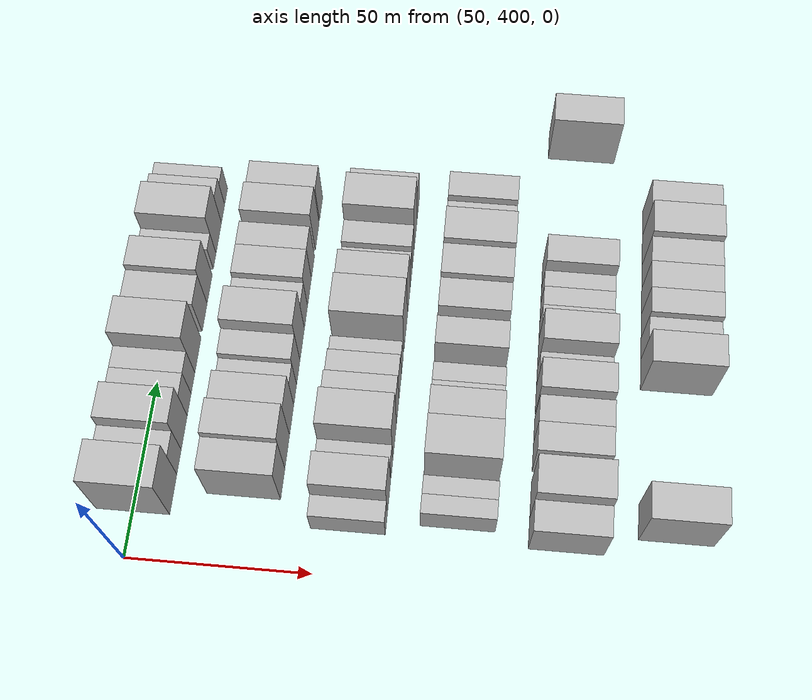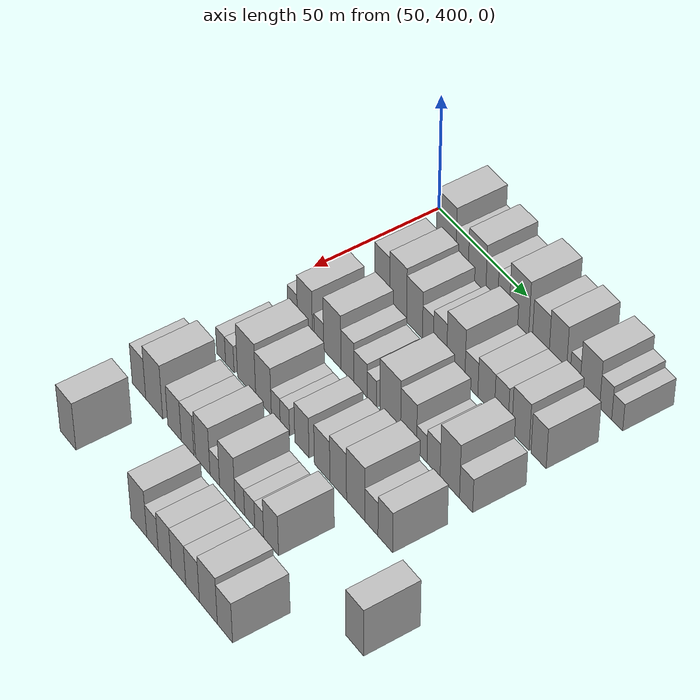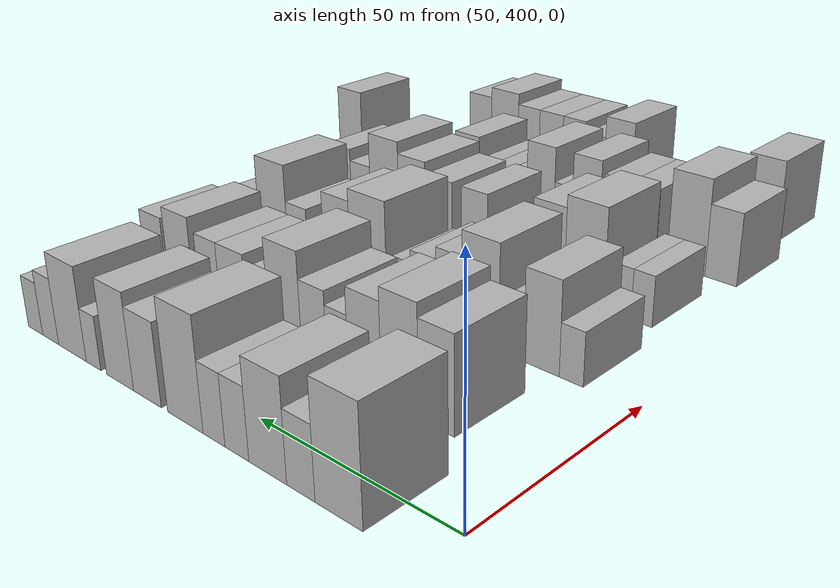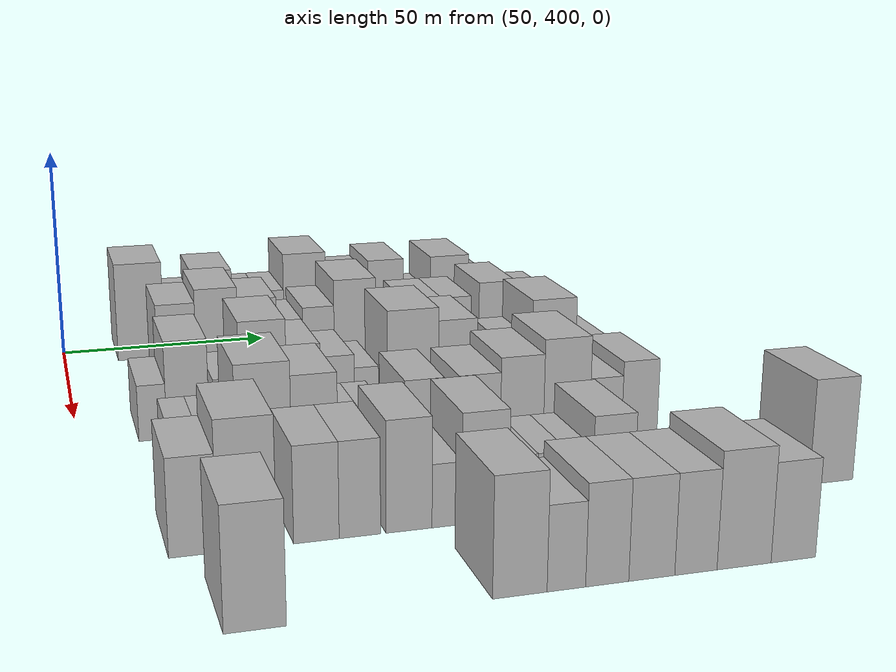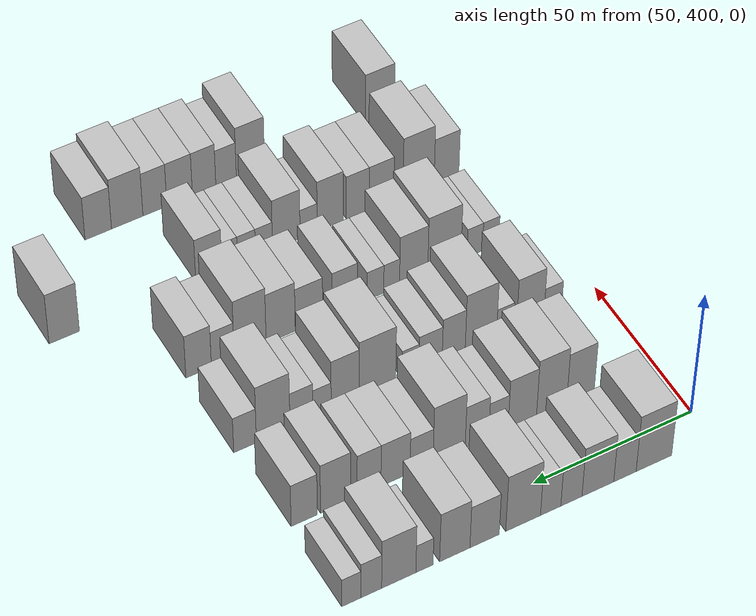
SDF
<sdf version="1.6">
 <world name="default">
  <model name="building_99">
   <static>1</static>
   <pose>50.0000 418.2380 0 0.000000 0.000000 0.000000</pose>
   <link name="link">
    <pose>0 0 12.00 0 0 0</pose>
    <collision name="collision"><geometry><box><size>20.0000 11.2738 24.0000</size></box></geometry></collision>
    <visual name="visual">
     <cast_shadows>0</cast_shadows>
     <geometry><box><size>20.0000 11.2738 24.0000</size></box></geometry>
     <material>
      <script>
       <uri>model://HANNAS_wall/materials/scripts</uri>
       <uri>model://HANNAS_wall/materials/textures</uri>
       <name>vrc/HANNAS_wall</name>
      </script>
     </material>
    </visual>
   </link>
  </model>
  <model name="building_100">
   <static>1</static>
   <pose>50.0000 427.4073 0 0.000000 0.000000 0.000000</pose>
   <link name="link">
    <pose>0 0 7.50 0 0 0</pose>
    <collision name="collision"><geometry><box><size>20.0000 7.0647 15.0000</size></box></geometry></collision>
    <visual name="visual">
     <cast_shadows>0</cast_shadows>
     <geometry><box><size>20.0000 7.0647 15.0000</size></box></geometry>
     <material>
      <script>
       <uri>model://HANNAS_wall/materials/scripts</uri>
       <uri>model://HANNAS_wall/materials/textures</uri>
       <name>vrc/HANNAS_wall</name>
      </script>
     </material>
    </visual>
   </link>
  </model>
  <model name="building_101">
   <static>1</static>
   <pose>50.0000 435.9150 0 0.000000 0.000000 0.000000</pose>
   <link name="link">
    <pose>0 0 10.50 0 0 0</pose>
    <collision name="collision"><geometry><box><size>20.0000 9.9508 21.0000</size></box></geometry></collision>
    <visual name="visual">
     <cast_shadows>0</cast_shadows>
     <geometry><box><size>20.0000 9.9508 21.0000</size></box></geometry>
     <material>
      <script>
       <uri>model://HANNAS_wall/materials/scripts</uri>
       <uri>model://HANNAS_wall/materials/textures</uri>
       <name>vrc/HANNAS_wall</name>
      </script>
     </material>
    </visual>
   </link>
  </model>
  <model name="building_102">
   <static>1</static>
   <pose>50.0000 444.1927 0 0.000000 0.000000 0.000000</pose>
   <link name="link">
    <pose>0 0 7.50 0 0 0</pose>
    <collision name="collision"><geometry><box><size>20.0000 6.6046 15.0000</size></box></geometry></collision>
    <visual name="visual">
     <cast_shadows>0</cast_shadows>
     <geometry><box><size>20.0000 6.6046 15.0000</size></box></geometry>
     <material>
      <script>
       <uri>model://HANNAS_wall/materials/scripts</uri>
       <uri>model://HANNAS_wall/materials/textures</uri>
       <name>vrc/HANNAS_wall</name>
      </script>
     </material>
    </visual>
   </link>
  </model>
  <model name="building_103">
   <static>1</static>
   <pose>50.0000 450.6560 0 0.000000 0.000000 0.000000</pose>
   <link name="link">
    <pose>0 0 7.50 0 0 0</pose>
    <collision name="collision"><geometry><box><size>20.0000 6.3219 15.0000</size></box></geometry></collision>
    <visual name="visual">
     <cast_shadows>0</cast_shadows>
     <geometry><box><size>20.0000 6.3219 15.0000</size></box></geometry>
     <material>
      <script>
       <uri>model://HANNAS_wall/materials/scripts</uri>
       <uri>model://HANNAS_wall/materials/textures</uri>
       <name>vrc/HANNAS_wall</name>
      </script>
     </material>
    </visual>
   </link>
  </model>
  <model name="building_104">
   <static>1</static>
   <pose>50.0000 459.1873 0 0.000000 0.000000 0.000000</pose>
   <link name="link">
    <pose>0 0 12.00 0 0 0</pose>
    <collision name="collision"><geometry><box><size>20.0000 10.7407 24.0000</size></box></geometry></collision>
    <visual name="visual">
     <cast_shadows>0</cast_shadows>
     <geometry><box><size>20.0000 10.7407 24.0000</size></box></geometry>
     <material>
      <script>
       <uri>model://HANNAS_wall/materials/scripts</uri>
       <uri>model://HANNAS_wall/materials/textures</uri>
       <name>vrc/HANNAS_wall</name>
      </script>
     </material>
    </visual>
   </link>
  </model>
  <model name="building_105">
   <static>1</static>
   <pose>50.0000 471.0494 0 0.000000 0.000000 0.000000</pose>
   <link name="link">
    <pose>0 0 9.00 0 0 0</pose>
    <collision name="collision"><geometry><box><size>20.0000 8.9835 18.0000</size></box></geometry></collision>
    <visual name="visual">
     <cast_shadows>0</cast_shadows>
     <geometry><box><size>20.0000 8.9835 18.0000</size></box></geometry>
     <material>
      <script>
       <uri>model://HANNAS_wall/materials/scripts</uri>
       <uri>model://HANNAS_wall/materials/textures</uri>
       <name>vrc/HANNAS_wall</name>
      </script>
     </material>
    </visual>
   </link>
  </model>
  <model name="building_106">
   <static>1</static>
   <pose>50.0000 480.1566 0 0.000000 0.000000 0.000000</pose>
   <link name="link">
    <pose>0 0 10.50 0 0 0</pose>
    <collision name="collision"><geometry><box><size>20.0000 9.2309 21.0000</size></box></geometry></collision>
    <visual name="visual">
     <cast_shadows>0</cast_shadows>
     <geometry><box><size>20.0000 9.2309 21.0000</size></box></geometry>
     <material>
      <script>
       <uri>model://HANNAS_wall/materials/scripts</uri>
       <uri>model://HANNAS_wall/materials/textures</uri>
       <name>vrc/HANNAS_wall</name>
      </script>
     </material>
    </visual>
   </link>
  </model>
  <model name="building_107">
   <static>1</static>
   <pose>50.0000 489.3734 0 0.000000 0.000000 0.000000</pose>
   <link name="link">
    <pose>0 0 6.00 0 0 0</pose>
    <collision name="collision"><geometry><box><size>20.0000 5.2027 12.0000</size></box></geometry></collision>
    <visual name="visual">
     <cast_shadows>0</cast_shadows>
     <geometry><box><size>20.0000 5.2027 12.0000</size></box></geometry>
     <material>
      <script>
       <uri>model://HANNAS_wall/materials/scripts</uri>
       <uri>model://HANNAS_wall/materials/textures</uri>
       <name>vrc/HANNAS_wall</name>
      </script>
     </material>
    </visual>
   </link>
  </model>
  <model name="building_108">
   <static>1</static>
   <pose>50.0000 497.1324 0 0.000000 0.000000 0.000000</pose>
   <link name="link">
    <pose>0 0 10.50 0 0 0</pose>
    <collision name="collision"><geometry><box><size>20.0000 10.3153 21.0000</size></box></geometry></collision>
    <visual name="visual">
     <cast_shadows>0</cast_shadows>
     <geometry><box><size>20.0000 10.3153 21.0000</size></box></geometry>
     <material>
      <script>
       <uri>model://HANNAS_wall/materials/scripts</uri>
       <uri>model://HANNAS_wall/materials/textures</uri>
       <name>vrc/HANNAS_wall</name>
      </script>
     </material>
    </visual>
   </link>
  </model>
  <model name="building_109">
   <static>1</static>
   <pose>50.0000 505.4217 0 0.000000 0.000000 0.000000</pose>
   <link name="link">
    <pose>0 0 7.50 0 0 0</pose>
    <collision name="collision"><geometry><box><size>20.0000 6.2634 15.0000</size></box></geometry></collision>
    <visual name="visual">
     <cast_shadows>0</cast_shadows>
     <geometry><box><size>20.0000 6.2634 15.0000</size></box></geometry>
     <material>
      <script>
       <uri>model://HANNAS_wall/materials/scripts</uri>
       <uri>model://HANNAS_wall/materials/textures</uri>
       <name>vrc/HANNAS_wall</name>
      </script>
     </material>
    </visual>
   </link>
  </model>
  <model name="building_110">
   <static>1</static>
   <pose>50.0000 511.3871 0 0.000000 0.000000 0.000000</pose>
   <link name="link">
    <pose>0 0 6.00 0 0 0</pose>
    <collision name="collision"><geometry><box><size>20.0000 5.6673 12.0000</size></box></geometry></collision>
    <visual name="visual">
     <cast_shadows>0</cast_shadows>
     <geometry><box><size>20.0000 5.6673 12.0000</size></box></geometry>
     <material>
      <script>
       <uri>model://HANNAS_wall/materials/scripts</uri>
       <uri>model://HANNAS_wall/materials/textures</uri>
       <name>vrc/HANNAS_wall</name>
      </script>
     </material>
    </visual>
   </link>
  </model>
  <model name="building_211">
   <static>1</static>
   <pose>79.0000 423.6879 0 0.000000 0.000000 0.000000</pose>
   <link name="link">
    <pose>0 0 10.50 0 0 0</pose>
    <collision name="collision"><geometry><box><size>20.0000 8.7917 21.0000</size></box></geometry></collision>
    <visual name="visual">
     <cast_shadows>0</cast_shadows>
     <geometry><box><size>20.0000 8.7917 21.0000</size></box></geometry>
     <material>
      <script>
       <uri>model://HANNAS_wall/materials/scripts</uri>
       <uri>model://HANNAS_wall/materials/textures</uri>
       <name>vrc/HANNAS_wall</name>
      </script>
     </material>
    </visual>
   </link>
  </model>
  <model name="building_212">
   <static>1</static>
   <pose>79.0000 432.8858 0 0.000000 0.000000 0.000000</pose>
   <link name="link">
    <pose>0 0 12.00 0 0 0</pose>
    <collision name="collision"><geometry><box><size>20.0000 9.6042 24.0000</size></box></geometry></collision>
    <visual name="visual">
     <cast_shadows>0</cast_shadows>
     <geometry><box><size>20.0000 9.6042 24.0000</size></box></geometry>
     <material>
      <script>
       <uri>model://HANNAS_wall/materials/scripts</uri>
       <uri>model://HANNAS_wall/materials/textures</uri>
       <name>vrc/HANNAS_wall</name>
      </script>
     </material>
    </visual>
   </link>
  </model>
  <model name="building_213">
   <static>1</static>
   <pose>79.0000 442.1794 0 0.000000 0.000000 0.000000</pose>
   <link name="link">
    <pose>0 0 10.50 0 0 0</pose>
    <collision name="collision"><geometry><box><size>20.0000 8.9830 21.0000</size></box></geometry></collision>
    <visual name="visual">
     <cast_shadows>0</cast_shadows>
     <geometry><box><size>20.0000 8.9830 21.0000</size></box></geometry>
     <material>
      <script>
       <uri>model://HANNAS_wall/materials/scripts</uri>
       <uri>model://HANNAS_wall/materials/textures</uri>
       <name>vrc/HANNAS_wall</name>
      </script>
     </material>
    </visual>
   </link>
  </model>
  <model name="building_214">
   <static>1</static>
   <pose>79.0000 449.7126 0 0.000000 0.000000 0.000000</pose>
   <link name="link">
    <pose>0 0 7.50 0 0 0</pose>
    <collision name="collision"><geometry><box><size>20.0000 6.0835 15.0000</size></box></geometry></collision>
    <visual name="visual">
     <cast_shadows>0</cast_shadows>
     <geometry><box><size>20.0000 6.0835 15.0000</size></box></geometry>
     <material>
      <script>
       <uri>model://HANNAS_wall/materials/scripts</uri>
       <uri>model://HANNAS_wall/materials/textures</uri>
       <name>vrc/HANNAS_wall</name>
      </script>
     </material>
    </visual>
   </link>
  </model>
  <model name="building_215">
   <static>1</static>
   <pose>79.0000 456.4506 0 0.000000 0.000000 0.000000</pose>
   <link name="link">
    <pose>0 0 9.00 0 0 0</pose>
    <collision name="collision"><geometry><box><size>20.0000 7.3925 18.0000</size></box></geometry></collision>
    <visual name="visual">
     <cast_shadows>0</cast_shadows>
     <geometry><box><size>20.0000 7.3925 18.0000</size></box></geometry>
     <material>
      <script>
       <uri>model://HANNAS_wall/materials/scripts</uri>
       <uri>model://HANNAS_wall/materials/textures</uri>
       <name>vrc/HANNAS_wall</name>
      </script>
     </material>
    </visual>
   </link>
  </model>
  <model name="building_216">
   <static>1</static>
   <pose>79.0000 465.1450 0 0.000000 0.000000 0.000000</pose>
   <link name="link">
    <pose>0 0 12.00 0 0 0</pose>
    <collision name="collision"><geometry><box><size>20.0000 9.9963 24.0000</size></box></geometry></collision>
    <visual name="visual">
     <cast_shadows>0</cast_shadows>
     <geometry><box><size>20.0000 9.9963 24.0000</size></box></geometry>
     <material>
      <script>
       <uri>model://HANNAS_wall/materials/scripts</uri>
       <uri>model://HANNAS_wall/materials/textures</uri>
       <name>vrc/HANNAS_wall</name>
      </script>
     </material>
    </visual>
   </link>
  </model>
  <model name="building_217">
   <static>1</static>
   <pose>79.0000 473.7004 0 0.000000 0.000000 0.000000</pose>
   <link name="link">
    <pose>0 0 7.50 0 0 0</pose>
    <collision name="collision"><geometry><box><size>20.0000 7.1144 15.0000</size></box></geometry></collision>
    <visual name="visual">
     <cast_shadows>0</cast_shadows>
     <geometry><box><size>20.0000 7.1144 15.0000</size></box></geometry>
     <material>
      <script>
       <uri>model://HANNAS_wall/materials/scripts</uri>
       <uri>model://HANNAS_wall/materials/textures</uri>
       <name>vrc/HANNAS_wall</name>
      </script>
     </material>
    </visual>
   </link>
  </model>
  <model name="building_218">
   <static>1</static>
   <pose>79.0000 481.7347 0 0.000000 0.000000 0.000000</pose>
   <link name="link">
    <pose>0 0 9.00 0 0 0</pose>
    <collision name="collision"><geometry><box><size>20.0000 8.9541 18.0000</size></box></geometry></collision>
    <visual name="visual">
     <cast_shadows>0</cast_shadows>
     <geometry><box><size>20.0000 8.9541 18.0000</size></box></geometry>
     <material>
      <script>
       <uri>model://HANNAS_wall/materials/scripts</uri>
       <uri>model://HANNAS_wall/materials/textures</uri>
       <name>vrc/HANNAS_wall</name>
      </script>
     </material>
    </visual>
   </link>
  </model>
  <model name="building_219">
   <static>1</static>
   <pose>79.0000 489.8589 0 0.000000 0.000000 0.000000</pose>
   <link name="link">
    <pose>0 0 9.00 0 0 0</pose>
    <collision name="collision"><geometry><box><size>20.0000 7.2944 18.0000</size></box></geometry></collision>
    <visual name="visual">
     <cast_shadows>0</cast_shadows>
     <geometry><box><size>20.0000 7.2944 18.0000</size></box></geometry>
     <material>
      <script>
       <uri>model://HANNAS_wall/materials/scripts</uri>
       <uri>model://HANNAS_wall/materials/textures</uri>
       <name>vrc/HANNAS_wall</name>
      </script>
     </material>
    </visual>
   </link>
  </model>
  <model name="building_220">
   <static>1</static>
   <pose>79.0000 500.0773 0 0.000000 0.000000 0.000000</pose>
   <link name="link">
    <pose>0 0 10.50 0 0 0</pose>
    <collision name="collision"><geometry><box><size>20.0000 9.1423 21.0000</size></box></geometry></collision>
    <visual name="visual">
     <cast_shadows>0</cast_shadows>
     <geometry><box><size>20.0000 9.1423 21.0000</size></box></geometry>
     <material>
      <script>
       <uri>model://HANNAS_wall/materials/scripts</uri>
       <uri>model://HANNAS_wall/materials/textures</uri>
       <name>vrc/HANNAS_wall</name>
      </script>
     </material>
    </visual>
   </link>
  </model>
  <model name="building_221">
   <static>1</static>
   <pose>79.0000 509.6005 0 0.000000 0.000000 0.000000</pose>
   <link name="link">
    <pose>0 0 9.00 0 0 0</pose>
    <collision name="collision"><geometry><box><size>20.0000 7.9041 18.0000</size></box></geometry></collision>
    <visual name="visual">
     <cast_shadows>0</cast_shadows>
     <geometry><box><size>20.0000 7.9041 18.0000</size></box></geometry>
     <material>
      <script>
       <uri>model://HANNAS_wall/materials/scripts</uri>
       <uri>model://HANNAS_wall/materials/textures</uri>
       <name>vrc/HANNAS_wall</name>
      </script>
     </material>
    </visual>
   </link>
  </model>
  <model name="building_323">
   <static>1</static>
   <pose>108.0000 415.0385 0 0.000000 0.000000 0.000000</pose>
   <link name="link">
    <pose>0 0 6.00 0 0 0</pose>
    <collision name="collision"><geometry><box><size>20.0000 5.7661 12.0000</size></box></geometry></collision>
    <visual name="visual">
     <cast_shadows>0</cast_shadows>
     <geometry><box><size>20.0000 5.7661 12.0000</size></box></geometry>
     <material>
      <script>
       <uri>model://HANNAS_wall/materials/scripts</uri>
       <uri>model://HANNAS_wall/materials/textures</uri>
       <name>vrc/HANNAS_wall</name>
      </script>
     </material>
    </visual>
   </link>
  </model>
  <model name="building_324">
   <static>1</static>
   <pose>108.0000 422.3529 0 0.000000 0.000000 0.000000</pose>
   <link name="link">
    <pose>0 0 10.50 0 0 0</pose>
    <collision name="collision"><geometry><box><size>20.0000 8.8627 21.0000</size></box></geometry></collision>
    <visual name="visual">
     <cast_shadows>0</cast_shadows>
     <geometry><box><size>20.0000 8.8627 21.0000</size></box></geometry>
     <material>
      <script>
       <uri>model://HANNAS_wall/materials/scripts</uri>
       <uri>model://HANNAS_wall/materials/textures</uri>
       <name>vrc/HANNAS_wall</name>
      </script>
     </material>
    </visual>
   </link>
  </model>
  <model name="building_325">
   <static>1</static>
   <pose>108.0000 430.5180 0 0.000000 0.000000 0.000000</pose>
   <link name="link">
    <pose>0 0 6.00 0 0 0</pose>
    <collision name="collision"><geometry><box><size>20.0000 5.4675 12.0000</size></box></geometry></collision>
    <visual name="visual">
     <cast_shadows>0</cast_shadows>
     <geometry><box><size>20.0000 5.4675 12.0000</size></box></geometry>
     <material>
      <script>
       <uri>model://HANNAS_wall/materials/scripts</uri>
       <uri>model://HANNAS_wall/materials/textures</uri>
       <name>vrc/HANNAS_wall</name>
      </script>
     </material>
    </visual>
   </link>
  </model>
  <model name="building_326">
   <static>1</static>
   <pose>108.0000 438.2695 0 0.000000 0.000000 0.000000</pose>
   <link name="link">
    <pose>0 0 12.00 0 0 0</pose>
    <collision name="collision"><geometry><box><size>20.0000 10.0355 24.0000</size></box></geometry></collision>
    <visual name="visual">
     <cast_shadows>0</cast_shadows>
     <geometry><box><size>20.0000 10.0355 24.0000</size></box></geometry>
     <material>
      <script>
       <uri>model://HANNAS_wall/materials/scripts</uri>
       <uri>model://HANNAS_wall/materials/textures</uri>
       <name>vrc/HANNAS_wall</name>
      </script>
     </material>
    </visual>
   </link>
  </model>
  <model name="building_327">
   <static>1</static>
   <pose>108.0000 446.9493 0 0.000000 0.000000 0.000000</pose>
   <link name="link">
    <pose>0 0 9.00 0 0 0</pose>
    <collision name="collision"><geometry><box><size>20.0000 7.3241 18.0000</size></box></geometry></collision>
    <visual name="visual">
     <cast_shadows>0</cast_shadows>
     <geometry><box><size>20.0000 7.3241 18.0000</size></box></geometry>
     <material>
      <script>
       <uri>model://HANNAS_wall/materials/scripts</uri>
       <uri>model://HANNAS_wall/materials/textures</uri>
       <name>vrc/HANNAS_wall</name>
      </script>
     </material>
    </visual>
   </link>
  </model>
  <model name="building_328">
   <static>1</static>
   <pose>108.0000 454.3072 0 0.000000 0.000000 0.000000</pose>
   <link name="link">
    <pose>0 0 7.50 0 0 0</pose>
    <collision name="collision"><geometry><box><size>20.0000 7.3918 15.0000</size></box></geometry></collision>
    <visual name="visual">
     <cast_shadows>0</cast_shadows>
     <geometry><box><size>20.0000 7.3918 15.0000</size></box></geometry>
     <material>
      <script>
       <uri>model://HANNAS_wall/materials/scripts</uri>
       <uri>model://HANNAS_wall/materials/textures</uri>
       <name>vrc/HANNAS_wall</name>
      </script>
     </material>
    </visual>
   </link>
  </model>
  <model name="building_329">
   <static>1</static>
   <pose>108.0000 460.6471 0 0.000000 0.000000 0.000000</pose>
   <link name="link">
    <pose>0 0 6.00 0 0 0</pose>
    <collision name="collision"><geometry><box><size>20.0000 5.2881 12.0000</size></box></geometry></collision>
    <visual name="visual">
     <cast_shadows>0</cast_shadows>
     <geometry><box><size>20.0000 5.2881 12.0000</size></box></geometry>
     <material>
      <script>
       <uri>model://HANNAS_wall/materials/scripts</uri>
       <uri>model://HANNAS_wall/materials/textures</uri>
       <name>vrc/HANNAS_wall</name>
      </script>
     </material>
    </visual>
   </link>
  </model>
  <model name="building_330">
   <static>1</static>
   <pose>108.0000 471.0103 0 0.000000 0.000000 0.000000</pose>
   <link name="link">
    <pose>0 0 12.00 0 0 0</pose>
    <collision name="collision"><geometry><box><size>20.0000 11.4383 24.0000</size></box></geometry></collision>
    <visual name="visual">
     <cast_shadows>0</cast_shadows>
     <geometry><box><size>20.0000 11.4383 24.0000</size></box></geometry>
     <material>
      <script>
       <uri>model://HANNAS_wall/materials/scripts</uri>
       <uri>model://HANNAS_wall/materials/textures</uri>
       <name>vrc/HANNAS_wall</name>
      </script>
     </material>
    </visual>
   </link>
  </model>
  <model name="building_331">
   <static>1</static>
   <pose>108.0000 481.0995 0 0.000000 0.000000 0.000000</pose>
   <link name="link">
    <pose>0 0 10.50 0 0 0</pose>
    <collision name="collision"><geometry><box><size>20.0000 8.7400 21.0000</size></box></geometry></collision>
    <visual name="visual">
     <cast_shadows>0</cast_shadows>
     <geometry><box><size>20.0000 8.7400 21.0000</size></box></geometry>
     <material>
      <script>
       <uri>model://HANNAS_wall/materials/scripts</uri>
       <uri>model://HANNAS_wall/materials/textures</uri>
       <name>vrc/HANNAS_wall</name>
      </script>
     </material>
    </visual>
   </link>
  </model>
  <model name="building_332">
   <static>1</static>
   <pose>108.0000 488.2990 0 0.000000 0.000000 0.000000</pose>
   <link name="link">
    <pose>0 0 6.00 0 0 0</pose>
    <collision name="collision"><geometry><box><size>20.0000 5.6590 12.0000</size></box></geometry></collision>
    <visual name="visual">
     <cast_shadows>0</cast_shadows>
     <geometry><box><size>20.0000 5.6590 12.0000</size></box></geometry>
     <material>
      <script>
       <uri>model://HANNAS_wall/materials/scripts</uri>
       <uri>model://HANNAS_wall/materials/textures</uri>
       <name>vrc/HANNAS_wall</name>
      </script>
     </material>
    </visual>
   </link>
  </model>
  <model name="building_333">
   <static>1</static>
   <pose>108.0000 494.6737 0 0.000000 0.000000 0.000000</pose>
   <link name="link">
    <pose>0 0 7.50 0 0 0</pose>
    <collision name="collision"><geometry><box><size>20.0000 7.0906 15.0000</size></box></geometry></collision>
    <visual name="visual">
     <cast_shadows>0</cast_shadows>
     <geometry><box><size>20.0000 7.0906 15.0000</size></box></geometry>
     <material>
      <script>
       <uri>model://HANNAS_wall/materials/scripts</uri>
       <uri>model://HANNAS_wall/materials/textures</uri>
       <name>vrc/HANNAS_wall</name>
      </script>
     </material>
    </visual>
   </link>
  </model>
  <model name="building_334">
   <static>1</static>
   <pose>108.0000 503.3780 0 0.000000 0.000000 0.000000</pose>
   <link name="link">
    <pose>0 0 12.00 0 0 0</pose>
    <collision name="collision"><geometry><box><size>20.0000 10.3179 24.0000</size></box></geometry></collision>
    <visual name="visual">
     <cast_shadows>0</cast_shadows>
     <geometry><box><size>20.0000 10.3179 24.0000</size></box></geometry>
     <material>
      <script>
       <uri>model://HANNAS_wall/materials/scripts</uri>
       <uri>model://HANNAS_wall/materials/textures</uri>
       <name>vrc/HANNAS_wall</name>
      </script>
     </material>
    </visual>
   </link>
  </model>
  <model name="building_335">
   <static>1</static>
   <pose>108.0000 511.9988 0 0.000000 0.000000 0.000000</pose>
   <link name="link">
    <pose>0 0 7.50 0 0 0</pose>
    <collision name="collision"><geometry><box><size>20.0000 6.9236 15.0000</size></box></geometry></collision>
    <visual name="visual">
     <cast_shadows>0</cast_shadows>
     <geometry><box><size>20.0000 6.9236 15.0000</size></box></geometry>
     <material>
      <script>
       <uri>model://HANNAS_wall/materials/scripts</uri>
       <uri>model://HANNAS_wall/materials/textures</uri>
       <name>vrc/HANNAS_wall</name>
      </script>
     </material>
    </visual>
   </link>
  </model>
  <model name="building_435">
   <static>1</static>
   <pose>137.0000 418.0753 0 0.000000 0.000000 0.000000</pose>
   <link name="link">
    <pose>0 0 6.00 0 0 0</pose>
    <collision name="collision"><geometry><box><size>20.0000 5.3284 12.0000</size></box></geometry></collision>
    <visual name="visual">
     <cast_shadows>0</cast_shadows>
     <geometry><box><size>20.0000 5.3284 12.0000</size></box></geometry>
     <material>
      <script>
       <uri>model://HANNAS_wall/materials/scripts</uri>
       <uri>model://HANNAS_wall/materials/textures</uri>
       <name>vrc/HANNAS_wall</name>
      </script>
     </material>
    </visual>
   </link>
  </model>
  <model name="building_436">
   <static>1</static>
   <pose>137.0000 423.2824 0 0.000000 0.000000 0.000000</pose>
   <link name="link">
    <pose>0 0 6.00 0 0 0</pose>
    <collision name="collision"><geometry><box><size>20.0000 5.0858 12.0000</size></box></geometry></collision>
    <visual name="visual">
     <cast_shadows>0</cast_shadows>
     <geometry><box><size>20.0000 5.0858 12.0000</size></box></geometry>
     <material>
      <script>
       <uri>model://HANNAS_wall/materials/scripts</uri>
       <uri>model://HANNAS_wall/materials/textures</uri>
       <name>vrc/HANNAS_wall</name>
      </script>
     </material>
    </visual>
   </link>
  </model>
  <model name="building_437">
   <static>1</static>
   <pose>137.0000 433.2052 0 0.000000 0.000000 0.000000</pose>
   <link name="link">
    <pose>0 0 12.00 0 0 0</pose>
    <collision name="collision"><geometry><box><size>20.0000 10.7597 24.0000</size></box></geometry></collision>
    <visual name="visual">
     <cast_shadows>0</cast_shadows>
     <geometry><box><size>20.0000 10.7597 24.0000</size></box></geometry>
     <material>
      <script>
       <uri>model://HANNAS_wall/materials/scripts</uri>
       <uri>model://HANNAS_wall/materials/textures</uri>
       <name>vrc/HANNAS_wall</name>
      </script>
     </material>
    </visual>
   </link>
  </model>
  <model name="building_438">
   <static>1</static>
   <pose>137.0000 443.1324 0 0.000000 0.000000 0.000000</pose>
   <link name="link">
    <pose>0 0 10.50 0 0 0</pose>
    <collision name="collision"><geometry><box><size>20.0000 9.0949 21.0000</size></box></geometry></collision>
    <visual name="visual">
     <cast_shadows>0</cast_shadows>
     <geometry><box><size>20.0000 9.0949 21.0000</size></box></geometry>
     <material>
      <script>
       <uri>model://HANNAS_wall/materials/scripts</uri>
       <uri>model://HANNAS_wall/materials/textures</uri>
       <name>vrc/HANNAS_wall</name>
      </script>
     </material>
    </visual>
   </link>
  </model>
  <model name="building_439">
   <static>1</static>
   <pose>137.0000 450.2198 0 0.000000 0.000000 0.000000</pose>
   <link name="link">
    <pose>0 0 6.00 0 0 0</pose>
    <collision name="collision"><geometry><box><size>20.0000 5.0800 12.0000</size></box></geometry></collision>
    <visual name="visual">
     <cast_shadows>0</cast_shadows>
     <geometry><box><size>20.0000 5.0800 12.0000</size></box></geometry>
     <material>
      <script>
       <uri>model://HANNAS_wall/materials/scripts</uri>
       <uri>model://HANNAS_wall/materials/textures</uri>
       <name>vrc/HANNAS_wall</name>
      </script>
     </material>
    </visual>
   </link>
  </model>
  <model name="building_440">
   <static>1</static>
   <pose>137.0000 455.4458 0 0.000000 0.000000 0.000000</pose>
   <link name="link">
    <pose>0 0 6.00 0 0 0</pose>
    <collision name="collision"><geometry><box><size>20.0000 5.3719 12.0000</size></box></geometry></collision>
    <visual name="visual">
     <cast_shadows>0</cast_shadows>
     <geometry><box><size>20.0000 5.3719 12.0000</size></box></geometry>
     <material>
      <script>
       <uri>model://HANNAS_wall/materials/scripts</uri>
       <uri>model://HANNAS_wall/materials/textures</uri>
       <name>vrc/HANNAS_wall</name>
      </script>
     </material>
    </visual>
   </link>
  </model>
  <model name="building_441">
   <static>1</static>
   <pose>137.0000 465.1606 0 0.000000 0.000000 0.000000</pose>
   <link name="link">
    <pose>0 0 9.00 0 0 0</pose>
    <collision name="collision"><geometry><box><size>20.0000 8.0577 18.0000</size></box></geometry></collision>
    <visual name="visual">
     <cast_shadows>0</cast_shadows>
     <geometry><box><size>20.0000 8.0577 18.0000</size></box></geometry>
     <material>
      <script>
       <uri>model://HANNAS_wall/materials/scripts</uri>
       <uri>model://HANNAS_wall/materials/textures</uri>
       <name>vrc/HANNAS_wall</name>
      </script>
     </material>
    </visual>
   </link>
  </model>
  <model name="building_442">
   <static>1</static>
   <pose>137.0000 476.5386 0 0.000000 0.000000 0.000000</pose>
   <link name="link">
    <pose>0 0 9.00 0 0 0</pose>
    <collision name="collision"><geometry><box><size>20.0000 8.6983 18.0000</size></box></geometry></collision>
    <visual name="visual">
     <cast_shadows>0</cast_shadows>
     <geometry><box><size>20.0000 8.6983 18.0000</size></box></geometry>
     <material>
      <script>
       <uri>model://HANNAS_wall/materials/scripts</uri>
       <uri>model://HANNAS_wall/materials/textures</uri>
       <name>vrc/HANNAS_wall</name>
      </script>
     </material>
    </visual>
   </link>
  </model>
  <model name="building_443">
   <static>1</static>
   <pose>137.0000 485.4589 0 0.000000 0.000000 0.000000</pose>
   <link name="link">
    <pose>0 0 10.50 0 0 0</pose>
    <collision name="collision"><geometry><box><size>20.0000 9.1422 21.0000</size></box></geometry></collision>
    <visual name="visual">
     <cast_shadows>0</cast_shadows>
     <geometry><box><size>20.0000 9.1422 21.0000</size></box></geometry>
     <material>
      <script>
       <uri>model://HANNAS_wall/materials/scripts</uri>
       <uri>model://HANNAS_wall/materials/textures</uri>
       <name>vrc/HANNAS_wall</name>
      </script>
     </material>
    </visual>
   </link>
  </model>
  <model name="building_444">
   <static>1</static>
   <pose>137.0000 495.0190 0 0.000000 0.000000 0.000000</pose>
   <link name="link">
    <pose>0 0 12.00 0 0 0</pose>
    <collision name="collision"><geometry><box><size>20.0000 9.9781 24.0000</size></box></geometry></collision>
    <visual name="visual">
     <cast_shadows>0</cast_shadows>
     <geometry><box><size>20.0000 9.9781 24.0000</size></box></geometry>
     <material>
      <script>
       <uri>model://HANNAS_wall/materials/scripts</uri>
       <uri>model://HANNAS_wall/materials/textures</uri>
       <name>vrc/HANNAS_wall</name>
      </script>
     </material>
    </visual>
   </link>
  </model>
  <model name="building_445">
   <static>1</static>
   <pose>137.0000 503.5569 0 0.000000 0.000000 0.000000</pose>
   <link name="link">
    <pose>0 0 7.50 0 0 0</pose>
    <collision name="collision"><geometry><box><size>20.0000 7.0976 15.0000</size></box></geometry></collision>
    <visual name="visual">
     <cast_shadows>0</cast_shadows>
     <geometry><box><size>20.0000 7.0976 15.0000</size></box></geometry>
     <material>
      <script>
       <uri>model://HANNAS_wall/materials/scripts</uri>
       <uri>model://HANNAS_wall/materials/textures</uri>
       <name>vrc/HANNAS_wall</name>
      </script>
     </material>
    </visual>
   </link>
  </model>
  <model name="building_446">
   <static>1</static>
   <pose>137.0000 511.0595 0 0.000000 0.000000 0.000000</pose>
   <link name="link">
    <pose>0 0 9.00 0 0 0</pose>
    <collision name="collision"><geometry><box><size>20.0000 7.9075 18.0000</size></box></geometry></collision>
    <visual name="visual">
     <cast_shadows>0</cast_shadows>
     <geometry><box><size>20.0000 7.9075 18.0000</size></box></geometry>
     <material>
      <script>
       <uri>model://HANNAS_wall/materials/scripts</uri>
       <uri>model://HANNAS_wall/materials/textures</uri>
       <name>vrc/HANNAS_wall</name>
      </script>
     </material>
    </visual>
   </link>
  </model>
  <model name="building_546">
   <static>1</static>
   <pose>166.0000 415.7500 0 0.000000 0.000000 0.000000</pose>
   <link name="link">
    <pose>0 0 9.00 0 0 0</pose>
    <collision name="collision"><geometry><box><size>20.0000 8.2215 18.0000</size></box></geometry></collision>
    <visual name="visual">
     <cast_shadows>0</cast_shadows>
     <geometry><box><size>20.0000 8.2215 18.0000</size></box></geometry>
     <material>
      <script>
       <uri>model://HANNAS_wall/materials/scripts</uri>
       <uri>model://HANNAS_wall/materials/textures</uri>
       <name>vrc/HANNAS_wall</name>
      </script>
     </material>
    </visual>
   </link>
  </model>
  <model name="building_547">
   <static>1</static>
   <pose>166.0000 425.0015 0 0.000000 0.000000 0.000000</pose>
   <link name="link">
    <pose>0 0 12.00 0 0 0</pose>
    <collision name="collision"><geometry><box><size>20.0000 10.2815 24.0000</size></box></geometry></collision>
    <visual name="visual">
     <cast_shadows>0</cast_shadows>
     <geometry><box><size>20.0000 10.2815 24.0000</size></box></geometry>
     <material>
      <script>
       <uri>model://HANNAS_wall/materials/scripts</uri>
       <uri>model://HANNAS_wall/materials/textures</uri>
       <name>vrc/HANNAS_wall</name>
      </script>
     </material>
    </visual>
   </link>
  </model>
  <model name="building_548">
   <static>1</static>
   <pose>166.0000 437.1751 0 0.000000 0.000000 0.000000</pose>
   <link name="link">
    <pose>0 0 9.00 0 0 0</pose>
    <collision name="collision"><geometry><box><size>20.0000 8.0659 18.0000</size></box></geometry></collision>
    <visual name="visual">
     <cast_shadows>0</cast_shadows>
     <geometry><box><size>20.0000 8.0659 18.0000</size></box></geometry>
     <material>
      <script>
       <uri>model://HANNAS_wall/materials/scripts</uri>
       <uri>model://HANNAS_wall/materials/textures</uri>
       <name>vrc/HANNAS_wall</name>
      </script>
     </material>
    </visual>
   </link>
  </model>
  <model name="building_549">
   <static>1</static>
   <pose>166.0000 444.9384 0 0.000000 0.000000 0.000000</pose>
   <link name="link">
    <pose>0 0 9.00 0 0 0</pose>
    <collision name="collision"><geometry><box><size>20.0000 7.4606 18.0000</size></box></geometry></collision>
    <visual name="visual">
     <cast_shadows>0</cast_shadows>
     <geometry><box><size>20.0000 7.4606 18.0000</size></box></geometry>
     <material>
      <script>
       <uri>model://HANNAS_wall/materials/scripts</uri>
       <uri>model://HANNAS_wall/materials/textures</uri>
       <name>vrc/HANNAS_wall</name>
      </script>
     </material>
    </visual>
   </link>
  </model>
  <model name="building_550">
   <static>1</static>
   <pose>166.0000 453.8828 0 0.000000 0.000000 0.000000</pose>
   <link name="link">
    <pose>0 0 10.50 0 0 0</pose>
    <collision name="collision"><geometry><box><size>20.0000 8.4283 21.0000</size></box></geometry></collision>
    <visual name="visual">
     <cast_shadows>0</cast_shadows>
     <geometry><box><size>20.0000 8.4283 21.0000</size></box></geometry>
     <material>
      <script>
       <uri>model://HANNAS_wall/materials/scripts</uri>
       <uri>model://HANNAS_wall/materials/textures</uri>
       <name>vrc/HANNAS_wall</name>
      </script>
     </material>
    </visual>
   </link>
  </model>
  <model name="building_551">
   <static>1</static>
   <pose>166.0000 460.8639 0 0.000000 0.000000 0.000000</pose>
   <link name="link">
    <pose>0 0 6.00 0 0 0</pose>
    <collision name="collision"><geometry><box><size>20.0000 5.5340 12.0000</size></box></geometry></collision>
    <visual name="visual">
     <cast_shadows>0</cast_shadows>
     <geometry><box><size>20.0000 5.5340 12.0000</size></box></geometry>
     <material>
      <script>
       <uri>model://HANNAS_wall/materials/scripts</uri>
       <uri>model://HANNAS_wall/materials/textures</uri>
       <name>vrc/HANNAS_wall</name>
      </script>
     </material>
    </visual>
   </link>
  </model>
  <model name="building_552">
   <static>1</static>
   <pose>166.0000 468.0580 0 0.000000 0.000000 0.000000</pose>
   <link name="link">
    <pose>0 0 10.50 0 0 0</pose>
    <collision name="collision"><geometry><box><size>20.0000 8.8541 21.0000</size></box></geometry></collision>
    <visual name="visual">
     <cast_shadows>0</cast_shadows>
     <geometry><box><size>20.0000 8.8541 21.0000</size></box></geometry>
     <material>
      <script>
       <uri>model://HANNAS_wall/materials/scripts</uri>
       <uri>model://HANNAS_wall/materials/textures</uri>
       <name>vrc/HANNAS_wall</name>
      </script>
     </material>
    </visual>
   </link>
  </model>
  <model name="building_553">
   <static>1</static>
   <pose>166.0000 475.2028 0 0.000000 0.000000 0.000000</pose>
   <link name="link">
    <pose>0 0 6.00 0 0 0</pose>
    <collision name="collision"><geometry><box><size>20.0000 5.4357 12.0000</size></box></geometry></collision>
    <visual name="visual">
     <cast_shadows>0</cast_shadows>
     <geometry><box><size>20.0000 5.4357 12.0000</size></box></geometry>
     <material>
      <script>
       <uri>model://HANNAS_wall/materials/scripts</uri>
       <uri>model://HANNAS_wall/materials/textures</uri>
       <name>vrc/HANNAS_wall</name>
      </script>
     </material>
    </visual>
   </link>
  </model>
  <model name="building_554">
   <static>1</static>
   <pose>166.0000 480.7909 0 0.000000 0.000000 0.000000</pose>
   <link name="link">
    <pose>0 0 6.00 0 0 0</pose>
    <collision name="collision"><geometry><box><size>20.0000 5.7404 12.0000</size></box></geometry></collision>
    <visual name="visual">
     <cast_shadows>0</cast_shadows>
     <geometry><box><size>20.0000 5.7404 12.0000</size></box></geometry>
     <material>
      <script>
       <uri>model://HANNAS_wall/materials/scripts</uri>
       <uri>model://HANNAS_wall/materials/textures</uri>
       <name>vrc/HANNAS_wall</name>
      </script>
     </material>
    </visual>
   </link>
  </model>
  <model name="building_555">
   <static>1</static>
   <pose>166.0000 486.1401 0 0.000000 0.000000 0.000000</pose>
   <link name="link">
    <pose>0 0 6.00 0 0 0</pose>
    <collision name="collision"><geometry><box><size>20.0000 4.9581 12.0000</size></box></geometry></collision>
    <visual name="visual">
     <cast_shadows>0</cast_shadows>
     <geometry><box><size>20.0000 4.9581 12.0000</size></box></geometry>
     <material>
      <script>
       <uri>model://HANNAS_wall/materials/scripts</uri>
       <uri>model://HANNAS_wall/materials/textures</uri>
       <name>vrc/HANNAS_wall</name>
      </script>
     </material>
    </visual>
   </link>
  </model>
  <model name="building_556">
   <static>1</static>
   <pose>166.0000 492.7663 0 0.000000 0.000000 0.000000</pose>
   <link name="link">
    <pose>0 0 9.00 0 0 0</pose>
    <collision name="collision"><geometry><box><size>20.0000 8.2942 18.0000</size></box></geometry></collision>
    <visual name="visual">
     <cast_shadows>0</cast_shadows>
     <geometry><box><size>20.0000 8.2942 18.0000</size></box></geometry>
     <material>
      <script>
       <uri>model://HANNAS_wall/materials/scripts</uri>
       <uri>model://HANNAS_wall/materials/textures</uri>
       <name>vrc/HANNAS_wall</name>
      </script>
     </material>
    </visual>
   </link>
  </model>
  <model name="building_557">
   <static>1</static>
   <pose>166.0000 537.9316 0 0.000000 0.000000 0.000000</pose>
   <link name="link">
    <pose>0 0 10.50 0 0 0</pose>
    <collision name="collision"><geometry><box><size>20.0000 9.3455 21.0000</size></box></geometry></collision>
    <visual name="visual">
     <cast_shadows>0</cast_shadows>
     <geometry><box><size>20.0000 9.3455 21.0000</size></box></geometry>
     <material>
      <script>
       <uri>model://HANNAS_wall/materials/scripts</uri>
       <uri>model://HANNAS_wall/materials/textures</uri>
       <name>vrc/HANNAS_wall</name>
      </script>
     </material>
    </visual>
   </link>
  </model>
  <model name="building_669">
   <static>1</static>
   <pose>195.0000 421.4336 0 0.000000 0.000000 0.000000</pose>
   <link name="link">
    <pose>0 0 10.50 0 0 0</pose>
    <collision name="collision"><geometry><box><size>20.0000 9.7249 21.0000</size></box></geometry></collision>
    <visual name="visual">
     <cast_shadows>0</cast_shadows>
     <geometry><box><size>20.0000 9.7249 21.0000</size></box></geometry>
     <material>
      <script>
       <uri>model://HANNAS_wall/materials/scripts</uri>
       <uri>model://HANNAS_wall/materials/textures</uri>
       <name>vrc/HANNAS_wall</name>
      </script>
     </material>
    </visual>
   </link>
  </model>
  <model name="building_670">
   <static>1</static>
   <pose>195.0000 464.1418 0 0.000000 0.000000 0.000000</pose>
   <link name="link">
    <pose>0 0 10.50 0 0 0</pose>
    <collision name="collision"><geometry><box><size>20.0000 9.2305 21.0000</size></box></geometry></collision>
    <visual name="visual">
     <cast_shadows>0</cast_shadows>
     <geometry><box><size>20.0000 9.2305 21.0000</size></box></geometry>
     <material>
      <script>
       <uri>model://HANNAS_wall/materials/scripts</uri>
       <uri>model://HANNAS_wall/materials/textures</uri>
       <name>vrc/HANNAS_wall</name>
      </script>
     </material>
    </visual>
   </link>
  </model>
  <model name="building_671">
   <static>1</static>
   <pose>195.0000 472.0819 0 0.000000 0.000000 0.000000</pose>
   <link name="link">
    <pose>0 0 7.50 0 0 0</pose>
    <collision name="collision"><geometry><box><size>20.0000 6.6498 15.0000</size></box></geometry></collision>
    <visual name="visual">
     <cast_shadows>0</cast_shadows>
     <geometry><box><size>20.0000 6.6498 15.0000</size></box></geometry>
     <material>
      <script>
       <uri>model://HANNAS_wall/materials/scripts</uri>
       <uri>model://HANNAS_wall/materials/textures</uri>
       <name>vrc/HANNAS_wall</name>
      </script>
     </material>
    </visual>
   </link>
  </model>
  <model name="building_672">
   <static>1</static>
   <pose>195.0000 479.1863 0 0.000000 0.000000 0.000000</pose>
   <link name="link">
    <pose>0 0 9.00 0 0 0</pose>
    <collision name="collision"><geometry><box><size>20.0000 7.5589 18.0000</size></box></geometry></collision>
    <visual name="visual">
     <cast_shadows>0</cast_shadows>
     <geometry><box><size>20.0000 7.5589 18.0000</size></box></geometry>
     <material>
      <script>
       <uri>model://HANNAS_wall/materials/scripts</uri>
       <uri>model://HANNAS_wall/materials/textures</uri>
       <name>vrc/HANNAS_wall</name>
      </script>
     </material>
    </visual>
   </link>
  </model>
  <model name="building_673">
   <static>1</static>
   <pose>195.0000 487.0657 0 0.000000 0.000000 0.000000</pose>
   <link name="link">
    <pose>0 0 9.00 0 0 0</pose>
    <collision name="collision"><geometry><box><size>20.0000 8.2001 18.0000</size></box></geometry></collision>
    <visual name="visual">
     <cast_shadows>0</cast_shadows>
     <geometry><box><size>20.0000 8.2001 18.0000</size></box></geometry>
     <material>
      <script>
       <uri>model://HANNAS_wall/materials/scripts</uri>
       <uri>model://HANNAS_wall/materials/textures</uri>
       <name>vrc/HANNAS_wall</name>
      </script>
     </material>
    </visual>
   </link>
  </model>
  <model name="building_674">
   <static>1</static>
   <pose>195.0000 494.9969 0 0.000000 0.000000 0.000000</pose>
   <link name="link">
    <pose>0 0 9.00 0 0 0</pose>
    <collision name="collision"><geometry><box><size>20.0000 7.6622 18.0000</size></box></geometry></collision>
    <visual name="visual">
     <cast_shadows>0</cast_shadows>
     <geometry><box><size>20.0000 7.6622 18.0000</size></box></geometry>
     <material>
      <script>
       <uri>model://HANNAS_wall/materials/scripts</uri>
       <uri>model://HANNAS_wall/materials/textures</uri>
       <name>vrc/HANNAS_wall</name>
      </script>
     </material>
    </visual>
   </link>
  </model>
  <model name="building_675">
   <static>1</static>
   <pose>195.0000 503.8267 0 0.000000 0.000000 0.000000</pose>
   <link name="link">
    <pose>0 0 10.50 0 0 0</pose>
    <collision name="collision"><geometry><box><size>20.0000 9.9974 21.0000</size></box></geometry></collision>
    <visual name="visual">
     <cast_shadows>0</cast_shadows>
     <geometry><box><size>20.0000 9.9974 21.0000</size></box></geometry>
     <material>
      <script>
       <uri>model://HANNAS_wall/materials/scripts</uri>
       <uri>model://HANNAS_wall/materials/textures</uri>
       <name>vrc/HANNAS_wall</name>
      </script>
     </material>
    </visual>
   </link>
  </model>
  <model name="building_676">
   <static>1</static>
   <pose>195.0000 513.0198 0 0.000000 0.000000 0.000000</pose>
   <link name="link">
    <pose>0 0 9.00 0 0 0</pose>
    <collision name="collision"><geometry><box><size>20.0000 8.3887 18.0000</size></box></geometry></collision>
    <visual name="visual">
     <cast_shadows>0</cast_shadows>
     <geometry><box><size>20.0000 8.3887 18.0000</size></box></geometry>
     <material>
      <script>
       <uri>model://HANNAS_wall/materials/scripts</uri>
       <uri>model://HANNAS_wall/materials/textures</uri>
       <name>vrc/HANNAS_wall</name>
      </script>
     </material>
    </visual>
   </link>
  </model>
 </world>
</sdf>
